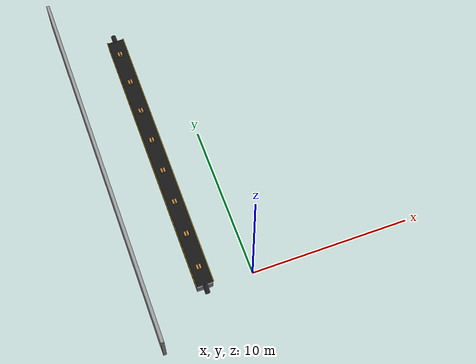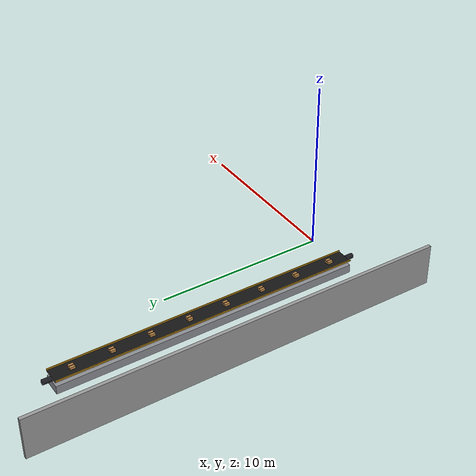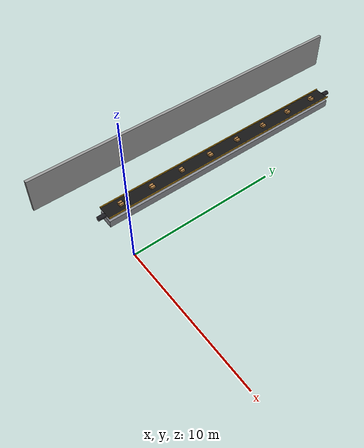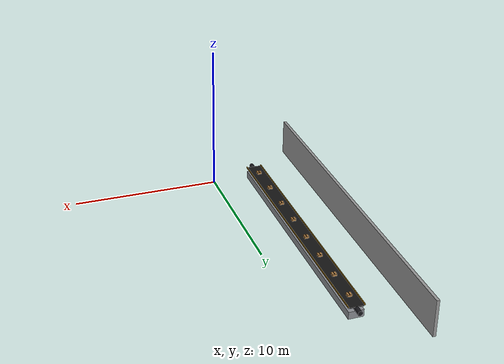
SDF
<sdf version="1.7">
 <world name="warehouse_layout2">
  <model name="ground_plane">
   <static>true</static>
   <link name="link">
    <collision name="collision">
     <geometry><plane><normal>0.0 0.0 1</normal><size>1 1</size></plane></geometry>
    </collision>
   </link>
  </model>
  <model name="west_belt_frame">
   <static>true</static>
   <pose>-3.0 9.0 0.25 0 0 1.5708</pose>
   <link name="link">
    <collision name="collision"><geometry><box><size>18.0 1.0 0.5</size></box></geometry></collision>
    <visual name="visual_base">
     <geometry><box><size>18.0 1.0 0.5</size></box></geometry>
     <material>
      <ambient>0.55 0.56 0.58 1</ambient>
      <diffuse>0.55 0.56 0.58 1</diffuse>
      <specular>0.6 0.6 0.6 1</specular>
     </material>
    </visual>
   </link>
  </model>
  <model name="west_belt_deck">
   <static>true</static>
   <pose>-3.0 9.0 0.775 0 0 1.5708</pose>
   <link name="link">
    <collision name="collision">
     <geometry><box><size>18.0 1.0 0.05</size></box></geometry>
     <surface><friction><ode><mu>1.0</mu><mu2>1.0</mu2></ode></friction></surface>
    </collision>
    <visual name="visual">
     <geometry><box><size>18.0 1.0 0.05</size></box></geometry>
     <material><ambient>0.08 0.08 0.08 1</ambient><diffuse>0.08 0.08 0.08 1</diffuse></material>
    </visual>
   </link>
  </model>
  <model name="west_belt_rail_left">
   <static>true</static>
   <pose>-3.5249999999964583 8.99999807156732 0.8400000000000001 0 0 1.5708</pose>
   <link name="link">
    <visual name="visual">
     <geometry><box><size>18.0 0.05 0.08</size></box></geometry>
     <material><ambient>0.75 0.55 0.1 1</ambient><diffuse>0.75 0.55 0.1 1</diffuse></material>
    </visual>
   </link>
  </model>
  <model name="west_belt_rail_right">
   <static>true</static>
   <pose>-2.4750000000035417 9.00000192843268 0.8400000000000001 0 0 1.5708</pose>
   <link name="link">
    <visual name="visual">
     <geometry><box><size>18.0 0.05 0.08</size></box></geometry>
     <material><ambient>0.75 0.55 0.1 1</ambient><diffuse>0.75 0.55 0.1 1</diffuse></material>
    </visual>
   </link>
  </model>
  <model name="west_belt_roller_start">
   <pose>-2.99996694115407 6.071587677070056e-11 0.65 1.5708 0 0</pose>
   <link name="roller_link">
    <inertial>
     <mass>0.5</mass>
     <inertia><ixx>0.01</ixx><iyy>0.01</iyy><izz>0.01</izz><ixy>0</ixy><ixz>0</ixz><iyz>0</iyz></inertia>
    </inertial>
    <visual name="visual">
     <geometry><cylinder><radius>0.15</radius><length>1.0</length></cylinder></geometry>
     <material>
      <ambient>0.1 0.1 0.12 1</ambient>
      <diffuse>0.1 0.1 0.12 1</diffuse>
      <specular>0.4 0.4 0.4 1</specular>
     </material>
    </visual>
    <collision name="collision">
     <geometry><cylinder><radius>0.15</radius><length>1.0</length></cylinder></geometry>
    </collision>
   </link>
   <joint name="spin_joint" type="revolute">
    <parent>world</parent>
    <child>roller_link</child>
    <axis><xyz>0 0 1</xyz><limit><lower>-1e16</lower><upper>1e16</upper></limit></axis>
   </joint>
   <plugin filename="libignition-gazebo-joint-controller-system.so" name="ignition::gazebo::systems::JointController">
    <joint_name>spin_joint</joint_name>
    <initial_velocity>6.0</initial_velocity>
   </plugin>
  </model>
  <model name="west_belt_roller_end">
   <pose>-3.00003305884593 17.999999999939284 0.65 1.5708 0 0</pose>
   <link name="roller_link">
    <inertial>
     <mass>0.5</mass>
     <inertia><ixx>0.01</ixx><iyy>0.01</iyy><izz>0.01</izz><ixy>0</ixy><ixz>0</ixz><iyz>0</iyz></inertia>
    </inertial>
    <visual name="visual">
     <geometry><cylinder><radius>0.15</radius><length>1.0</length></cylinder></geometry>
     <material>
      <ambient>0.1 0.1 0.12 1</ambient>
      <diffuse>0.1 0.1 0.12 1</diffuse>
      <specular>0.4 0.4 0.4 1</specular>
     </material>
    </visual>
    <collision name="collision">
     <geometry><cylinder><radius>0.15</radius><length>1.0</length></cylinder></geometry>
    </collision>
   </link>
   <joint name="spin_joint" type="revolute">
    <parent>world</parent>
    <child>roller_link</child>
    <axis><xyz>0 0 1</xyz><limit><lower>-1e16</lower><upper>1e16</upper></limit></axis>
   </joint>
   <plugin filename="libignition-gazebo-joint-controller-system.so" name="ignition::gazebo::systems::JointController">
    <joint_name>spin_joint</joint_name>
    <initial_velocity>6.0</initial_velocity>
   </plugin>
  </model>
  <model name="west_belt_pkg0">
   <pose>-2.999971073509811 1.1250000000531264 0.895 0 0 1.5708</pose>
   <link name="box_link">
    <inertial>
     <mass>0.2</mass>
     <inertia><ixx>0.001</ixx><iyy>0.001</iyy><izz>0.001</izz><ixy>0</ixy><ixz>0</ixz><iyz>0</iyz></inertia>
    </inertial>
    <visual name="visual_body">
     <geometry><box><size>0.3 0.3 0.15</size></box></geometry>
     <material><ambient>0.72 0.52 0.28 1</ambient><diffuse>0.72 0.52 0.28 1</diffuse></material>
    </visual>
    <visual name="visual_strap">
     <pose>0 0 0.076 0 0 0</pose>
     <geometry><box><size>0.3 0.045 0.002</size></box></geometry>
     <material><ambient>0.35 0.22 0.1 1</ambient><diffuse>0.35 0.22 0.1 1</diffuse></material>
    </visual>
    <collision name="collision">
     <geometry><box><size>0.3 0.3 0.15</size></box></geometry>
     <surface><friction><ode><mu>1.2</mu><mu2>1.2</mu2></ode></friction></surface>
    </collision>
   </link>
   <plugin filename="libignition-gazebo-velocity-control-system.so" name="ignition::gazebo::systems::VelocityControl">
    <link_name>box_link</link_name>
   </plugin>
  </model>
  <model name="west_belt_pkg1">
   <pose>-2.999979338221294 3.3750000000379474 0.895 0 0 1.5708</pose>
   <link name="box_link">
    <inertial>
     <mass>0.2</mass>
     <inertia><ixx>0.001</ixx><iyy>0.001</iyy><izz>0.001</izz><ixy>0</ixy><ixz>0</ixz><iyz>0</iyz></inertia>
    </inertial>
    <visual name="visual_body">
     <geometry><box><size>0.3 0.3 0.15</size></box></geometry>
     <material><ambient>0.72 0.52 0.28 1</ambient><diffuse>0.72 0.52 0.28 1</diffuse></material>
    </visual>
    <visual name="visual_strap">
     <pose>0 0 0.076 0 0 0</pose>
     <geometry><box><size>0.3 0.045 0.002</size></box></geometry>
     <material><ambient>0.35 0.22 0.1 1</ambient><diffuse>0.35 0.22 0.1 1</diffuse></material>
    </visual>
    <collision name="collision">
     <geometry><box><size>0.3 0.3 0.15</size></box></geometry>
     <surface><friction><ode><mu>1.2</mu><mu2>1.2</mu2></ode></friction></surface>
    </collision>
   </link>
   <plugin filename="libignition-gazebo-velocity-control-system.so" name="ignition::gazebo::systems::VelocityControl">
    <link_name>box_link</link_name>
   </plugin>
  </model>
  <model name="west_belt_pkg2">
   <pose>-2.999987602932776 5.6250000000227685 0.895 0 0 1.5708</pose>
   <link name="box_link">
    <inertial>
     <mass>0.2</mass>
     <inertia><ixx>0.001</ixx><iyy>0.001</iyy><izz>0.001</izz><ixy>0</ixy><ixz>0</ixz><iyz>0</iyz></inertia>
    </inertial>
    <visual name="visual_body">
     <geometry><box><size>0.3 0.3 0.15</size></box></geometry>
     <material><ambient>0.72 0.52 0.28 1</ambient><diffuse>0.72 0.52 0.28 1</diffuse></material>
    </visual>
    <visual name="visual_strap">
     <pose>0 0 0.076 0 0 0</pose>
     <geometry><box><size>0.3 0.045 0.002</size></box></geometry>
     <material><ambient>0.35 0.22 0.1 1</ambient><diffuse>0.35 0.22 0.1 1</diffuse></material>
    </visual>
    <collision name="collision">
     <geometry><box><size>0.3 0.3 0.15</size></box></geometry>
     <surface><friction><ode><mu>1.2</mu><mu2>1.2</mu2></ode></friction></surface>
    </collision>
   </link>
   <plugin filename="libignition-gazebo-velocity-control-system.so" name="ignition::gazebo::systems::VelocityControl">
    <link_name>box_link</link_name>
   </plugin>
  </model>
  <model name="west_belt_pkg3">
   <pose>-2.999995867644259 7.8750000000075895 0.895 0 0 1.5708</pose>
   <link name="box_link">
    <inertial>
     <mass>0.2</mass>
     <inertia><ixx>0.001</ixx><iyy>0.001</iyy><izz>0.001</izz><ixy>0</ixy><ixz>0</ixz><iyz>0</iyz></inertia>
    </inertial>
    <visual name="visual_body">
     <geometry><box><size>0.3 0.3 0.15</size></box></geometry>
     <material><ambient>0.72 0.52 0.28 1</ambient><diffuse>0.72 0.52 0.28 1</diffuse></material>
    </visual>
    <visual name="visual_strap">
     <pose>0 0 0.076 0 0 0</pose>
     <geometry><box><size>0.3 0.045 0.002</size></box></geometry>
     <material><ambient>0.35 0.22 0.1 1</ambient><diffuse>0.35 0.22 0.1 1</diffuse></material>
    </visual>
    <collision name="collision">
     <geometry><box><size>0.3 0.3 0.15</size></box></geometry>
     <surface><friction><ode><mu>1.2</mu><mu2>1.2</mu2></ode></friction></surface>
    </collision>
   </link>
   <plugin filename="libignition-gazebo-velocity-control-system.so" name="ignition::gazebo::systems::VelocityControl">
    <link_name>box_link</link_name>
   </plugin>
  </model>
  <model name="west_belt_pkg4">
   <pose>-3.000004132355741 10.124999999992411 0.895 0 0 1.5708</pose>
   <link name="box_link">
    <inertial>
     <mass>0.2</mass>
     <inertia><ixx>0.001</ixx><iyy>0.001</iyy><izz>0.001</izz><ixy>0</ixy><ixz>0</ixz><iyz>0</iyz></inertia>
    </inertial>
    <visual name="visual_body">
     <geometry><box><size>0.3 0.3 0.15</size></box></geometry>
     <material><ambient>0.72 0.52 0.28 1</ambient><diffuse>0.72 0.52 0.28 1</diffuse></material>
    </visual>
    <visual name="visual_strap">
     <pose>0 0 0.076 0 0 0</pose>
     <geometry><box><size>0.3 0.045 0.002</size></box></geometry>
     <material><ambient>0.35 0.22 0.1 1</ambient><diffuse>0.35 0.22 0.1 1</diffuse></material>
    </visual>
    <collision name="collision">
     <geometry><box><size>0.3 0.3 0.15</size></box></geometry>
     <surface><friction><ode><mu>1.2</mu><mu2>1.2</mu2></ode></friction></surface>
    </collision>
   </link>
   <plugin filename="libignition-gazebo-velocity-control-system.so" name="ignition::gazebo::systems::VelocityControl">
    <link_name>box_link</link_name>
   </plugin>
  </model>
  <model name="west_belt_pkg5">
   <pose>-3.000012397067224 12.37499999997723 0.895 0 0 1.5708</pose>
   <link name="box_link">
    <inertial>
     <mass>0.2</mass>
     <inertia><ixx>0.001</ixx><iyy>0.001</iyy><izz>0.001</izz><ixy>0</ixy><ixz>0</ixz><iyz>0</iyz></inertia>
    </inertial>
    <visual name="visual_body">
     <geometry><box><size>0.3 0.3 0.15</size></box></geometry>
     <material><ambient>0.72 0.52 0.28 1</ambient><diffuse>0.72 0.52 0.28 1</diffuse></material>
    </visual>
    <visual name="visual_strap">
     <pose>0 0 0.076 0 0 0</pose>
     <geometry><box><size>0.3 0.045 0.002</size></box></geometry>
     <material><ambient>0.35 0.22 0.1 1</ambient><diffuse>0.35 0.22 0.1 1</diffuse></material>
    </visual>
    <collision name="collision">
     <geometry><box><size>0.3 0.3 0.15</size></box></geometry>
     <surface><friction><ode><mu>1.2</mu><mu2>1.2</mu2></ode></friction></surface>
    </collision>
   </link>
   <plugin filename="libignition-gazebo-velocity-control-system.so" name="ignition::gazebo::systems::VelocityControl">
    <link_name>box_link</link_name>
   </plugin>
  </model>
  <model name="west_belt_pkg6">
   <pose>-3.000020661778706 14.624999999962053 0.895 0 0 1.5708</pose>
   <link name="box_link">
    <inertial>
     <mass>0.2</mass>
     <inertia><ixx>0.001</ixx><iyy>0.001</iyy><izz>0.001</izz><ixy>0</ixy><ixz>0</ixz><iyz>0</iyz></inertia>
    </inertial>
    <visual name="visual_body">
     <geometry><box><size>0.3 0.3 0.15</size></box></geometry>
     <material><ambient>0.72 0.52 0.28 1</ambient><diffuse>0.72 0.52 0.28 1</diffuse></material>
    </visual>
    <visual name="visual_strap">
     <pose>0 0 0.076 0 0 0</pose>
     <geometry><box><size>0.3 0.045 0.002</size></box></geometry>
     <material><ambient>0.35 0.22 0.1 1</ambient><diffuse>0.35 0.22 0.1 1</diffuse></material>
    </visual>
    <collision name="collision">
     <geometry><box><size>0.3 0.3 0.15</size></box></geometry>
     <surface><friction><ode><mu>1.2</mu><mu2>1.2</mu2></ode></friction></surface>
    </collision>
   </link>
   <plugin filename="libignition-gazebo-velocity-control-system.so" name="ignition::gazebo::systems::VelocityControl">
    <link_name>box_link</link_name>
   </plugin>
  </model>
  <model name="west_belt_pkg7">
   <pose>-3.000028926490189 16.874999999946873 0.895 0 0 1.5708</pose>
   <link name="box_link">
    <inertial>
     <mass>0.2</mass>
     <inertia><ixx>0.001</ixx><iyy>0.001</iyy><izz>0.001</izz><ixy>0</ixy><ixz>0</ixz><iyz>0</iyz></inertia>
    </inertial>
    <visual name="visual_body">
     <geometry><box><size>0.3 0.3 0.15</size></box></geometry>
     <material><ambient>0.72 0.52 0.28 1</ambient><diffuse>0.72 0.52 0.28 1</diffuse></material>
    </visual>
    <visual name="visual_strap">
     <pose>0 0 0.076 0 0 0</pose>
     <geometry><box><size>0.3 0.045 0.002</size></box></geometry>
     <material><ambient>0.35 0.22 0.1 1</ambient><diffuse>0.35 0.22 0.1 1</diffuse></material>
    </visual>
    <collision name="collision">
     <geometry><box><size>0.3 0.3 0.15</size></box></geometry>
     <surface><friction><ode><mu>1.2</mu><mu2>1.2</mu2></ode></friction></surface>
    </collision>
   </link>
   <plugin filename="libignition-gazebo-velocity-control-system.so" name="ignition::gazebo::systems::VelocityControl">
    <link_name>box_link</link_name>
   </plugin>
  </model>
  <model name="wall_west">
   <static>true</static>
   <pose>-6.5 9.0 1.25 0 0 1.5708</pose>
   <link name="link">
    <collision name="collision"><geometry><box><size>24.0 0.2 2.5</size></box></geometry></collision>
    <visual name="visual">
     <geometry><box><size>24.0 0.2 2.5</size></box></geometry>
     <material><ambient>0.6 0.6 0.6 1</ambient><diffuse>0.6 0.6 0.6 1</diffuse></material>
    </visual>
   </link>
  </model>
 </world>
</sdf>
